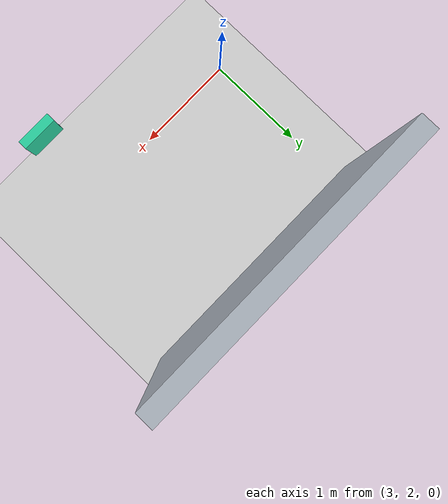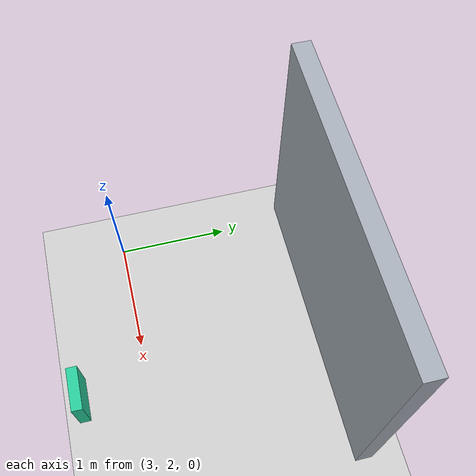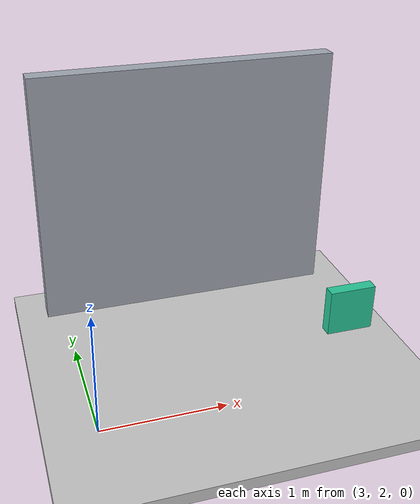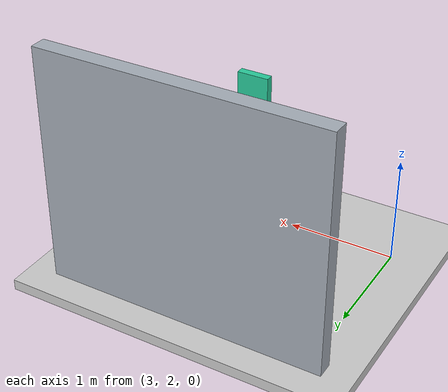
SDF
<sdf version="1.9">
 <world name="default">
  <model name="ground_plane">
   <static>true</static>
   <pose>4.75 0 -0.05 0 0 0</pose>
   <link name="body">
    <collision name="collision"><geometry><box><size>13.5 12 0.1</size></box></geometry></collision>
    <visual name="visual">
     <geometry><box><size>13.5 12 0.1</size></box></geometry>
     <material><ambient>0.8 0.8 0.8 1</ambient><diffuse>0.8 0.8 0.8 1</diffuse></material>
    </visual>
   </link>
  </model>
  <model name="room_end_1_1">
   <static>true</static>
   <pose>4.15 3.65 1.1 0 0 0</pose>
   <link name="body">
    <collision name="collision"><geometry><box><size>2.6 0.15 2.2</size></box></geometry></collision>
    <visual name="visual">
     <geometry><box><size>2.6 0.15 2.2</size></box></geometry>
     <material><ambient>0.65 0.68 0.72 1</ambient><diffuse>0.65 0.68 0.72 1</diffuse></material>
    </visual>
   </link>
  </model>
  <model name="r3geo_base_r005_left_1_entrance_sign">
   <static>true</static>
   <pose>4.680000000000001 1.55 1.05 0 0 0</pose>
   <link name="body">
    <visual name="visual">
     <geometry><box><size>0.32 0.08 0.32</size></box></geometry>
     <material><ambient>0.16 0.8 0.61 1</ambient><diffuse>0.16 0.8 0.61 1</diffuse></material>
    </visual>
   </link>
  </model>
 </world>
</sdf>
